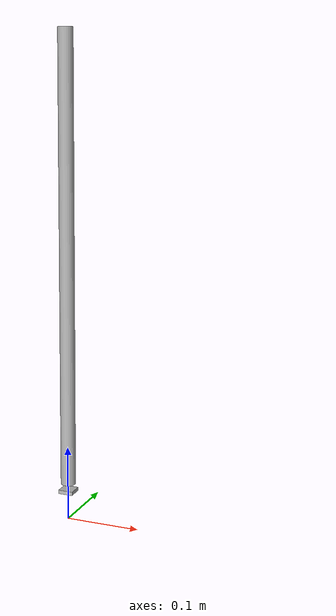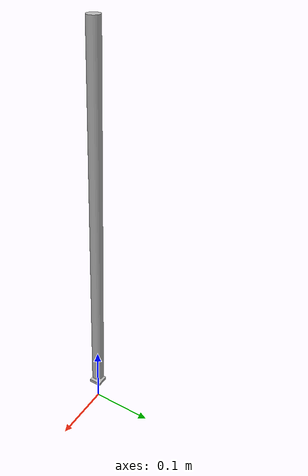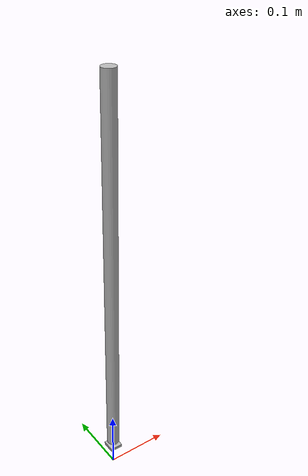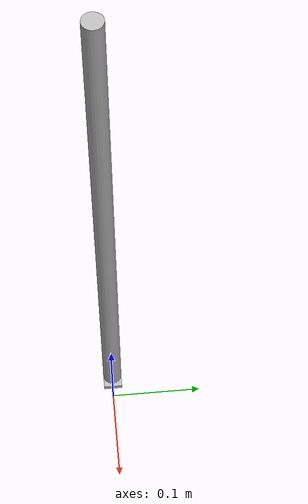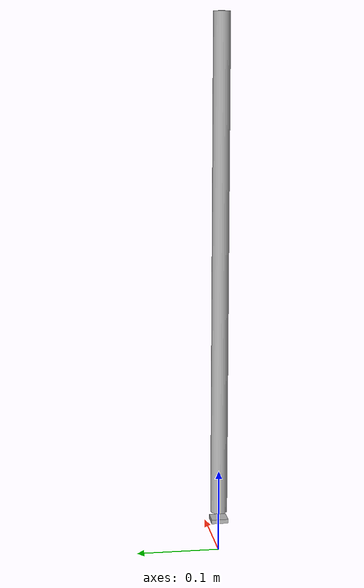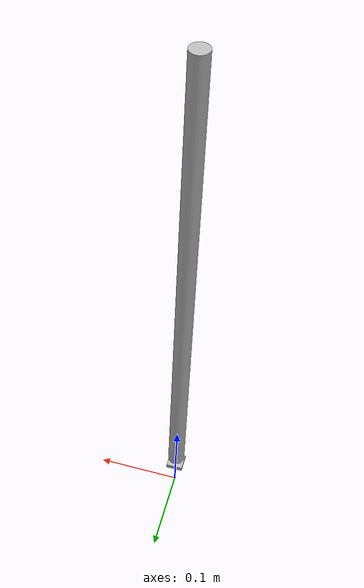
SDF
<sdf version="1.6">
    <model name="pendulum">
        <static>false</static>
        <pose>0 0 0.04 0 0 0</pose>
        <link name="base">
            <pose frame="">0 0 0 0 0 0</pose>
            <inertial>
                <pose frame="">0.0 0.0 0 0 -0 0</pose>
                <mass>0.05</mass>
                <inertia>
                    <ixx>0.000000708</ixx>
                    <ixy>0</ixy>
                    <ixz>0</ixz>
                    <iyy>0.000000708</iyy>
                    <iyz>0</iyz>
                    <izz>0.000001333</izz>
                </inertia>
            </inertial>
            <collision name="base_link_inertia_collision">
                <pose frame="">0 0 0 0 0.0 0</pose>
                <geometry>
                    <box>
                        <size>0.02 0.02 0.005</size>
                    </box>
                </geometry>
            </collision>

            <visual name="base">
                <pose frame="">0 0 0 0 0.0 0</pose>
                <geometry>
                    <box>
                        <size>0.02 0.02 0.005</size>
                    </box>
                </geometry>
            </visual>
        </link>
        <link name="pendulum_link">
        <pose relative_to='pendulum_pivot'>0.0 0.0 0.3 0.0 0.0 0</pose>
        <inertial>
            <mass>0.032</mass>
            <inertia>
            <ixx>0.001190371216</ixx> <iyy>0.001190371216</iyy> <izz>0.000001333</izz>
            <ixy>0</ixy> <ixz>0</ixz> <iyz>0</iyz>
            </inertia>
        </inertial>
        <visual name="visual">
            <geometry>
            <cylinder>
                <radius>0.01</radius>
                <length>0.6</length>
            </cylinder>
            </geometry>
        </visual>
        <gravity>1</gravity>
        <collision name="collision">
            <geometry>
            <cylinder>
                <radius>0.01</radius>
                <length>0.6</length>
            </cylinder>
            </geometry>
        </collision>
        </link>

        <joint name='pendulum_pivot' type='universal'>
            <parent>base</parent>
            <child>pendulum_link</child>
            <pose relative_to="base">0 0 0.01 0 -0 0</pose>
            <axis>
                <xyz> 1 1 0</xyz>
                <use_parent_model_frame>1</use_parent_model_frame>
                <limit>
                <lower>-1.57</lower>
                <upper>1.57</upper>
                <effort>0.0</effort>
                <velocity>100000000</velocity>
                </limit>
                <dynamics>
                <spring_reference>0</spring_reference>
                <spring_stiffness>0</spring_stiffness>
                <damping>0.0</damping>
                <friction>0.0</friction>
                </dynamics>
            </axis>
            </joint>

    </model>
</sdf>
